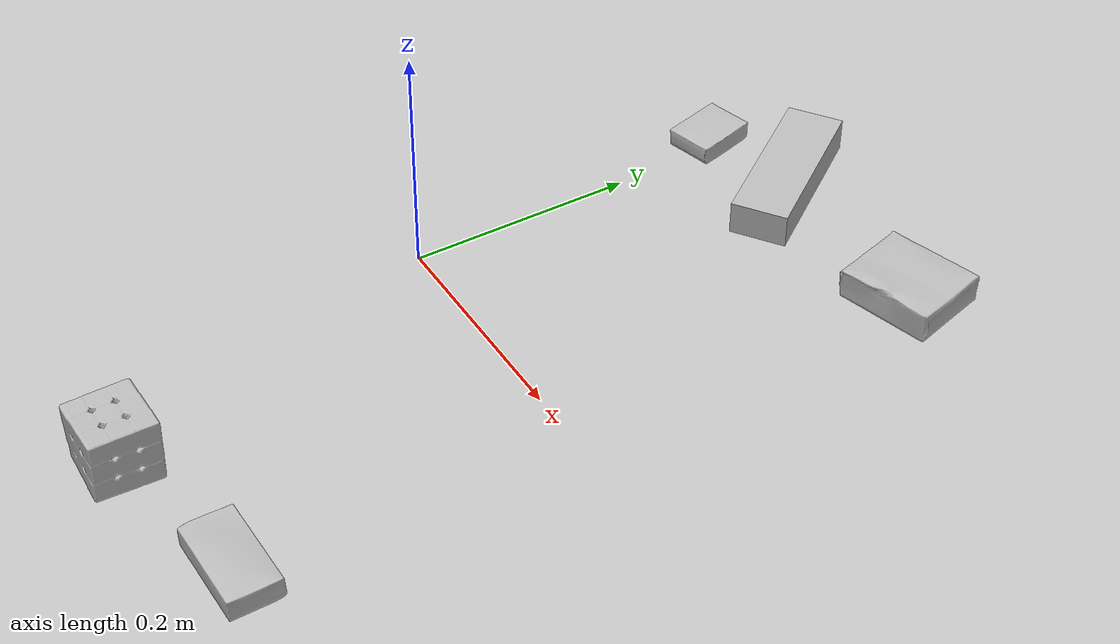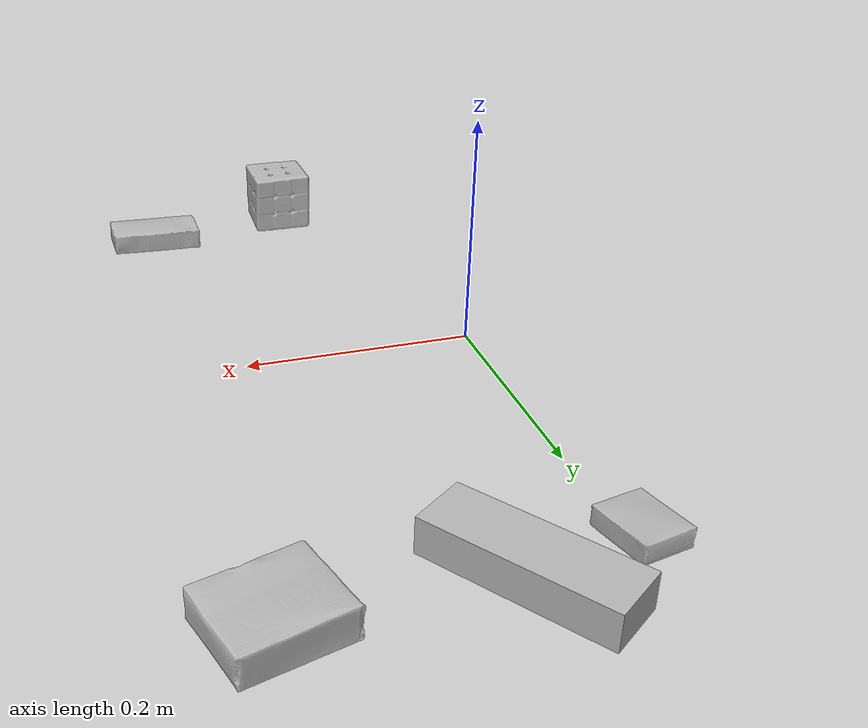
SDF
<?xml version="1.0" ?>
<sdf version="1.4">
  <world name="default">
    <light name="light1" type="point">
      <pose>0 0 1 0 0 0</pose>
      <diffuse>3 3 3 1</diffuse>
      <specular>3 3 3 1</specular>
    </light>
    <light name="light2" type="point">
      <pose>0 0.5 2 0 0 0</pose>
      <diffuse>1 1 1 1</diffuse>
      <specular>1 1 1 1</specular>
    </light>
    <light name="light3" type="point">
      <pose>0 0.5 2 0 0 0</pose>
      <diffuse>3 3 3 1</diffuse>
      <specular>3 3 3 1</specular>
    </light>
    <scene>
      <ambient>0.7 0.7 0.7</ambient>
    </scene>
    <model name="box1">
      <link name="link_box1">
        <collision name="default">
          <geometry>
            <mesh>
              <uri>model://sugar_box/collision_meshes/collision.obj</uri>
              <scale>0.5 0.5 0.5</scale>
            </mesh>
          </geometry>
          <surface>
            <friction>
              <ode>
                <mu>0.5</mu>
                <mu2>0.5</mu2>
              </ode>
            </friction>
          </surface>
        </collision>
        <visual name="default">
          <geometry>
            <mesh>
              <uri>model://sugar_box/visual_meshes/visual.dae</uri>
              <scale>0.5 0.5 0.5</scale>
            </mesh>
          </geometry>
        </visual>
        <inertial>
          <mass>0.06211651861667633</mass>
          <pose>0.0005171863595023751 1.9245546354795806e-05 -0.00018182402709499002 -0.00040462630054681676 0.0010506634057476226 0.0026153787889456807</pose>
          <inertia>
            <ixx>1.2938825e-05</ixx>
            <iyy>4.1820942e-05</iyy>
            <izz>5.0064667e-05</izz>
            <ixy>0</ixy>
            <ixz>0</ixz>
            <iyz>0</iyz>
          </inertia>
        </inertial>
      </link>
      <pose>0.23952274024486542 -0.2801334857940674 0.011399305425584316 0.0007749696524987344 -0.023433187937931966 0.0002350706504579104</pose>
    </model>
    <model name="box2">
      <link name="link_box2">
        <collision name="default">
          <geometry>
            <mesh>
              <uri>model://rubiks_cube/collision_meshes/collision.obj</uri>
              <scale>1.0 1.0 1.0</scale>
            </mesh>
          </geometry>
          <surface>
            <friction>
              <ode>
                <mu>0.5</mu>
                <mu2>0.5</mu2>
              </ode>
            </friction>
          </surface>
        </collision>
        <visual name="default">
          <geometry>
            <mesh>
              <uri>model://rubiks_cube/visual_meshes/visual.dae</uri>
              <scale>1.0 1.0 1.0</scale>
            </mesh>
          </geometry>
        </visual>
        <inertial>
          <mass>0.2700360119342804</mass>
          <pose>2.6721041649580002e-05 5.256967051536776e-05 -7.264316536748083e-06 -0.05467324422766238 -0.0981422115654675 -0.034454566623261795</pose>
          <inertia>
            <ixx>0.00014921304</ixx>
            <iyy>0.00014851718</iyy>
            <izz>0.00015044949</izz>
            <ixy>0</ixy>
            <ixz>0</ixz>
            <iyz>0</iyz>
          </inertia>
        </inertial>
      </link>
      <pose>0.0999315157532692 -0.31022751331329346 0.028679009526968002 -4.249158821133872e-08 -9.313220940768615e-09 1.7392447027389832e-07</pose>
    </model>
    <model name="box3">
      <link name="link_box3">
        <collision name="default">
          <geometry>
            <mesh>
              <uri>model://jenga/collision_meshes/collision.obj</uri>
              <scale>1.0 1.0 1.0</scale>
            </mesh>
          </geometry>
          <surface>
            <friction>
              <ode>
                <mu>0.5</mu>
                <mu2>0.5</mu2>
              </ode>
            </friction>
          </surface>
        </collision>
        <visual name="default">
          <geometry>
            <mesh>
              <uri>model://jenga/visual_meshes/visual.dae</uri>
              <scale>1.0 1.0 1.0</scale>
            </mesh>
          </geometry>
        </visual>
        <inertial>
          <mass>0.12586519122123718</mass>
          <pose>-2.502855807051674e-07 -0.00010250010382151231 -4.0923401684267446e-05 0.0 -7.342154049184251e-07 0.0</pose>
          <inertia>
            <ixx>3.482995e-05</ixx>
            <iyy>0.0002360068</iyy>
            <izz>0.00025195733</izz>
            <ixy>0</ixy>
            <ixz>0</ixz>
            <iyz>0</iyz>
          </inertia>
        </inertial>
      </link>
      <pose>0.08008372783660889 0.3200591206550598 0.01499999687075615 -8.563637490706862e-09 -1.8703455348709966e-09 -0.9513469699789844</pose>
    </model>
    <model name="box4">
      <link name="link_box4">
        <collision name="default">
          <geometry>
            <mesh>
              <uri>model://gelatin_box/collision_meshes/collision.obj</uri>
              <scale>1.0 1.0 1.0</scale>
            </mesh>
          </geometry>
          <surface>
            <friction>
              <ode>
                <mu>0.5</mu>
                <mu2>0.5</mu2>
              </ode>
            </friction>
          </surface>
        </collision>
        <visual name="default">
          <geometry>
            <mesh>
              <uri>model://gelatin_box/visual_meshes/visual.dae</uri>
              <scale>1.0 1.0 1.0</scale>
            </mesh>
          </geometry>
        </visual>
        <inertial>
          <mass>0.0925464928150177</mass>
          <pose>0.0004319618456065655 0.00011156871914863586 -0.0003640321083366871 -0.0010503719798216618 -0.004755819622564704 0.01644055760929568</pose>
          <inertia>
            <ixx>6.533027e-05</ixx>
            <iyy>4.6665074e-05</iyy>
            <izz>9.9447236e-05</izz>
            <ixy>0</ixy>
            <ixz>0</ixz>
            <iyz>0</iyz>
          </inertia>
        </inertial>
      </link>
      <pose>0.2498472034931183 0.31999367475509644 0.015168318524956703 0.0055974849803728495 -0.007304598292186409 -1.3044238742768277</pose>
    </model>
    <model name="box5">
      <link name="link_box5">
        <collision name="default">
          <geometry>
            <mesh>
              <uri>model://pudding_box/collision_meshes/collision.obj</uri>
              <scale>0.5 0.5 0.5</scale>
            </mesh>
          </geometry>
          <surface>
            <friction>
              <ode>
                <mu>0.5</mu>
                <mu2>0.5</mu2>
              </ode>
            </friction>
          </surface>
        </collision>
        <visual name="default">
          <geometry>
            <mesh>
              <uri>model://pudding_box/visual_meshes/visual.dae</uri>
              <scale>0.5 0.5 0.5</scale>
            </mesh>
          </geometry>
        </visual>
        <inertial>
          <mass>0.0266704261302948</mass>
          <pose>0.00024474109522998333 0.00040339428232982755 -0.0002594413817860186 0.005213101812636465 -0.006603797316727521 0.020079823300208206</pose>
          <inertia>
            <ixx>7.5373864e-06</ixx>
            <iyy>5.0712065e-06</iyy>
            <izz>1.113092e-05</izz>
            <ixy>0</ixy>
            <ixz>0</ixz>
            <iyz>0</iyz>
          </inertia>
        </inertial>
      </link>
      <pose>-0.01020559947937727 0.29966598749160767 0.00986290443688631 0.0223486821239931 -0.011391589925889338 0.22571227487041054</pose>
    </model>
  </world>
</sdf>
